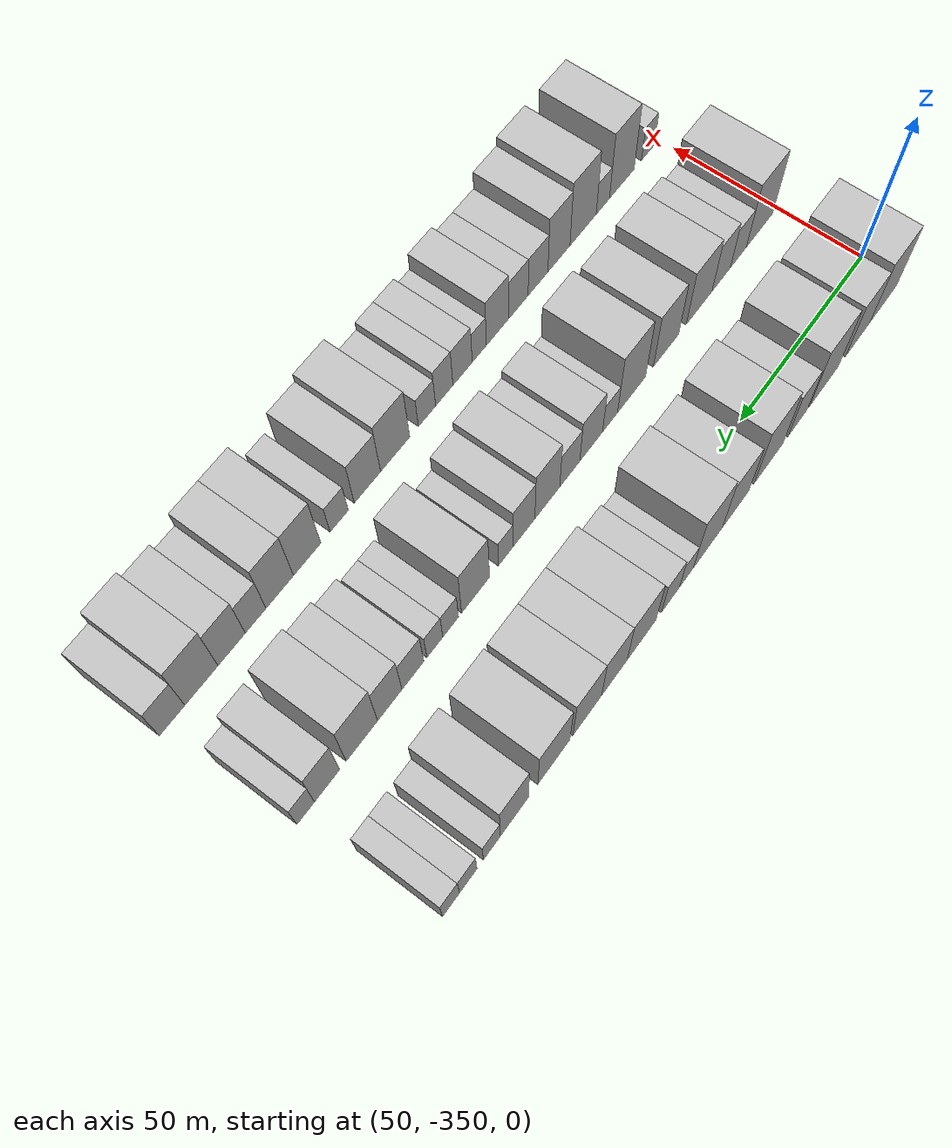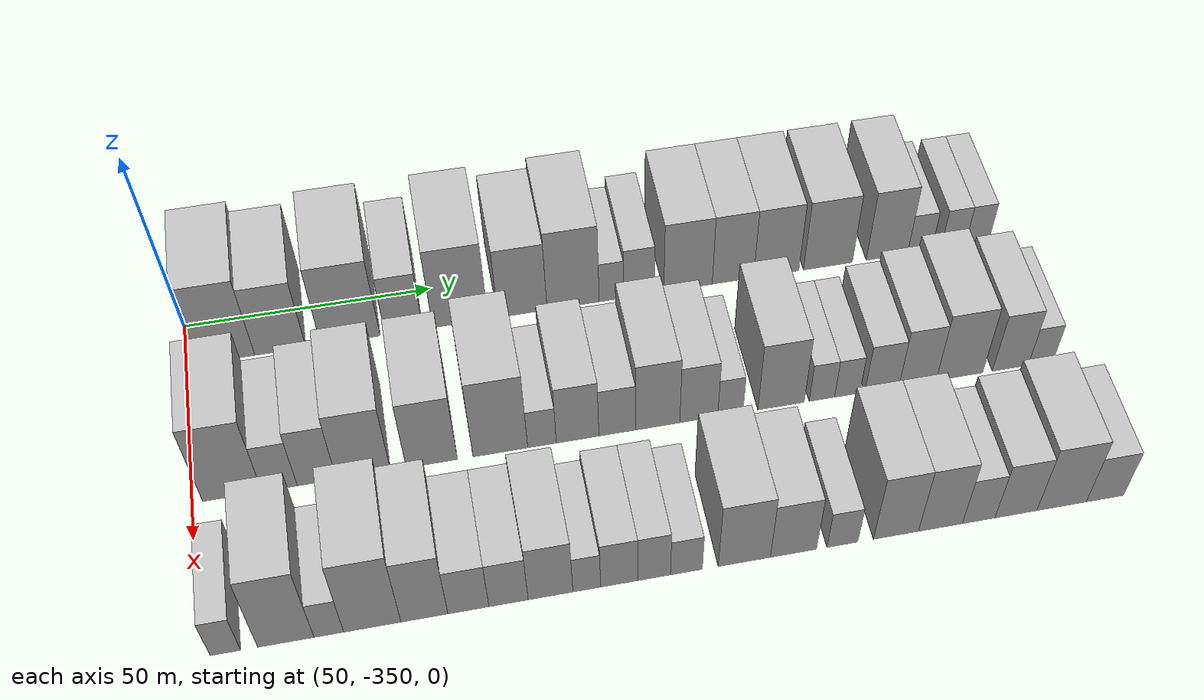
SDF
<sdf version="1.6">
 <world name="default">
  <model name="building_1">
   <static>1</static>
   <pose>50.0000 -342.1842 0 0.000000 0.000000 0.000000</pose>
   <link name="link">
    <pose>0 0 12.00 0 0 0</pose>
    <collision name="collision"><geometry><box><size>20.0000 11.6316 24.0000</size></box></geometry></collision>
    <visual name="visual">
     <cast_shadows>0</cast_shadows>
     <geometry><box><size>20.0000 11.6316 24.0000</size></box></geometry>
     <material>
      <script>
       <uri>model://HANNAS_wall/materials/scripts</uri>
       <uri>model://HANNAS_wall/materials/textures</uri>
       <name>vrc/HANNAS_wall</name>
      </script>
     </material>
    </visual>
   </link>
  </model>
  <model name="building_2">
   <static>1</static>
   <pose>50.0000 -331.2911 0 0.000000 0.000000 0.000000</pose>
   <link name="link">
    <pose>0 0 10.50 0 0 0</pose>
    <collision name="collision"><geometry><box><size>20.0000 10.1546 21.0000</size></box></geometry></collision>
    <visual name="visual">
     <cast_shadows>0</cast_shadows>
     <geometry><box><size>20.0000 10.1546 21.0000</size></box></geometry>
     <material>
      <script>
       <uri>model://HANNAS_wall/materials/scripts</uri>
       <uri>model://HANNAS_wall/materials/textures</uri>
       <name>vrc/HANNAS_wall</name>
      </script>
     </material>
    </visual>
   </link>
  </model>
  <model name="building_3">
   <static>1</static>
   <pose>50.0000 -317.2548 0 0.000000 0.000000 0.000000</pose>
   <link name="link">
    <pose>0 0 12.00 0 0 0</pose>
    <collision name="collision"><geometry><box><size>20.0000 11.9180 24.0000</size></box></geometry></collision>
    <visual name="visual">
     <cast_shadows>0</cast_shadows>
     <geometry><box><size>20.0000 11.9180 24.0000</size></box></geometry>
     <material>
      <script>
       <uri>model://HANNAS_wall/materials/scripts</uri>
       <uri>model://HANNAS_wall/materials/textures</uri>
       <name>vrc/HANNAS_wall</name>
      </script>
     </material>
    </visual>
   </link>
  </model>
  <model name="building_4">
   <static>1</static>
   <pose>50.0000 -306.4671 0 0.000000 0.000000 0.000000</pose>
   <link name="link">
    <pose>0 0 9.00 0 0 0</pose>
    <collision name="collision"><geometry><box><size>20.0000 7.6574 18.0000</size></box></geometry></collision>
    <visual name="visual">
     <cast_shadows>0</cast_shadows>
     <geometry><box><size>20.0000 7.6574 18.0000</size></box></geometry>
     <material>
      <script>
       <uri>model://HANNAS_wall/materials/scripts</uri>
       <uri>model://HANNAS_wall/materials/textures</uri>
       <name>vrc/HANNAS_wall</name>
      </script>
     </material>
    </visual>
   </link>
  </model>
  <model name="building_5">
   <static>1</static>
   <pose>50.0000 -295.0031 0 0.000000 0.000000 0.000000</pose>
   <link name="link">
    <pose>0 0 12.00 0 0 0</pose>
    <collision name="collision"><geometry><box><size>20.0000 11.2706 24.0000</size></box></geometry></collision>
    <visual name="visual">
     <cast_shadows>0</cast_shadows>
     <geometry><box><size>20.0000 11.2706 24.0000</size></box></geometry>
     <material>
      <script>
       <uri>model://HANNAS_wall/materials/scripts</uri>
       <uri>model://HANNAS_wall/materials/textures</uri>
       <name>vrc/HANNAS_wall</name>
      </script>
     </material>
    </visual>
   </link>
  </model>
  <model name="building_6">
   <static>1</static>
   <pose>50.0000 -282.3011 0 0.000000 0.000000 0.000000</pose>
   <link name="link">
    <pose>0 0 10.50 0 0 0</pose>
    <collision name="collision"><geometry><box><size>20.0000 10.1334 21.0000</size></box></geometry></collision>
    <visual name="visual">
     <cast_shadows>0</cast_shadows>
     <geometry><box><size>20.0000 10.1334 21.0000</size></box></geometry>
     <material>
      <script>
       <uri>model://HANNAS_wall/materials/scripts</uri>
       <uri>model://HANNAS_wall/materials/textures</uri>
       <name>vrc/HANNAS_wall</name>
      </script>
     </material>
    </visual>
   </link>
  </model>
  <model name="building_7">
   <static>1</static>
   <pose>50.0000 -271.8353 0 0.000000 0.000000 0.000000</pose>
   <link name="link">
    <pose>0 0 12.00 0 0 0</pose>
    <collision name="collision"><geometry><box><size>20.0000 10.7983 24.0000</size></box></geometry></collision>
    <visual name="visual">
     <cast_shadows>0</cast_shadows>
     <geometry><box><size>20.0000 10.7983 24.0000</size></box></geometry>
     <material>
      <script>
       <uri>model://HANNAS_wall/materials/scripts</uri>
       <uri>model://HANNAS_wall/materials/textures</uri>
       <name>vrc/HANNAS_wall</name>
      </script>
     </material>
    </visual>
   </link>
  </model>
  <model name="building_8">
   <static>1</static>
   <pose>50.0000 -263.9087 0 0.000000 0.000000 0.000000</pose>
   <link name="link">
    <pose>0 0 6.00 0 0 0</pose>
    <collision name="collision"><geometry><box><size>20.0000 5.0549 12.0000</size></box></geometry></collision>
    <visual name="visual">
     <cast_shadows>0</cast_shadows>
     <geometry><box><size>20.0000 5.0549 12.0000</size></box></geometry>
     <material>
      <script>
       <uri>model://HANNAS_wall/materials/scripts</uri>
       <uri>model://HANNAS_wall/materials/textures</uri>
       <name>vrc/HANNAS_wall</name>
      </script>
     </material>
    </visual>
   </link>
  </model>
  <model name="building_9">
   <static>1</static>
   <pose>50.0000 -258.1694 0 0.000000 0.000000 0.000000</pose>
   <link name="link">
    <pose>0 0 7.50 0 0 0</pose>
    <collision name="collision"><geometry><box><size>20.0000 6.4235 15.0000</size></box></geometry></collision>
    <visual name="visual">
     <cast_shadows>0</cast_shadows>
     <geometry><box><size>20.0000 6.4235 15.0000</size></box></geometry>
     <material>
      <script>
       <uri>model://HANNAS_wall/materials/scripts</uri>
       <uri>model://HANNAS_wall/materials/textures</uri>
       <name>vrc/HANNAS_wall</name>
      </script>
     </material>
    </visual>
   </link>
  </model>
  <model name="building_10">
   <static>1</static>
   <pose>50.0000 -247.8679 0 0.000000 0.000000 0.000000</pose>
   <link name="link">
    <pose>0 0 10.50 0 0 0</pose>
    <collision name="collision"><geometry><box><size>20.0000 10.1796 21.0000</size></box></geometry></collision>
    <visual name="visual">
     <cast_shadows>0</cast_shadows>
     <geometry><box><size>20.0000 10.1796 21.0000</size></box></geometry>
     <material>
      <script>
       <uri>model://HANNAS_wall/materials/scripts</uri>
       <uri>model://HANNAS_wall/materials/textures</uri>
       <name>vrc/HANNAS_wall</name>
      </script>
     </material>
    </visual>
   </link>
  </model>
  <model name="building_11">
   <static>1</static>
   <pose>50.0000 -238.3900 0 0.000000 0.000000 0.000000</pose>
   <link name="link">
    <pose>0 0 10.50 0 0 0</pose>
    <collision name="collision"><geometry><box><size>20.0000 8.7761 21.0000</size></box></geometry></collision>
    <visual name="visual">
     <cast_shadows>0</cast_shadows>
     <geometry><box><size>20.0000 8.7761 21.0000</size></box></geometry>
     <material>
      <script>
       <uri>model://HANNAS_wall/materials/scripts</uri>
       <uri>model://HANNAS_wall/materials/textures</uri>
       <name>vrc/HANNAS_wall</name>
      </script>
     </material>
    </visual>
   </link>
  </model>
  <model name="building_12">
   <static>1</static>
   <pose>50.0000 -229.1908 0 0.000000 0.000000 0.000000</pose>
   <link name="link">
    <pose>0 0 10.50 0 0 0</pose>
    <collision name="collision"><geometry><box><size>20.0000 9.6222 21.0000</size></box></geometry></collision>
    <visual name="visual">
     <cast_shadows>0</cast_shadows>
     <geometry><box><size>20.0000 9.6222 21.0000</size></box></geometry>
     <material>
      <script>
       <uri>model://HANNAS_wall/materials/scripts</uri>
       <uri>model://HANNAS_wall/materials/textures</uri>
       <name>vrc/HANNAS_wall</name>
      </script>
     </material>
    </visual>
   </link>
  </model>
  <model name="building_13">
   <static>1</static>
   <pose>50.0000 -218.1350 0 0.000000 0.000000 0.000000</pose>
   <link name="link">
    <pose>0 0 10.50 0 0 0</pose>
    <collision name="collision"><geometry><box><size>20.0000 10.4896 21.0000</size></box></geometry></collision>
    <visual name="visual">
     <cast_shadows>0</cast_shadows>
     <geometry><box><size>20.0000 10.4896 21.0000</size></box></geometry>
     <material>
      <script>
       <uri>model://HANNAS_wall/materials/scripts</uri>
       <uri>model://HANNAS_wall/materials/textures</uri>
       <name>vrc/HANNAS_wall</name>
      </script>
     </material>
    </visual>
   </link>
  </model>
  <model name="building_14">
   <static>1</static>
   <pose>50.0000 -205.4261 0 0.000000 0.000000 0.000000</pose>
   <link name="link">
    <pose>0 0 10.50 0 0 0</pose>
    <collision name="collision"><geometry><box><size>20.0000 8.9281 21.0000</size></box></geometry></collision>
    <visual name="visual">
     <cast_shadows>0</cast_shadows>
     <geometry><box><size>20.0000 8.9281 21.0000</size></box></geometry>
     <material>
      <script>
       <uri>model://HANNAS_wall/materials/scripts</uri>
       <uri>model://HANNAS_wall/materials/textures</uri>
       <name>vrc/HANNAS_wall</name>
      </script>
     </material>
    </visual>
   </link>
  </model>
  <model name="building_15">
   <static>1</static>
   <pose>50.0000 -198.3255 0 0.000000 0.000000 0.000000</pose>
   <link name="link">
    <pose>0 0 6.00 0 0 0</pose>
    <collision name="collision"><geometry><box><size>20.0000 5.2732 12.0000</size></box></geometry></collision>
    <visual name="visual">
     <cast_shadows>0</cast_shadows>
     <geometry><box><size>20.0000 5.2732 12.0000</size></box></geometry>
     <material>
      <script>
       <uri>model://HANNAS_wall/materials/scripts</uri>
       <uri>model://HANNAS_wall/materials/textures</uri>
       <name>vrc/HANNAS_wall</name>
      </script>
     </material>
    </visual>
   </link>
  </model>
  <model name="building_16">
   <static>1</static>
   <pose>50.0000 -191.0154 0 0.000000 0.000000 0.000000</pose>
   <link name="link">
    <pose>0 0 6.00 0 0 0</pose>
    <collision name="collision"><geometry><box><size>20.0000 5.3471 12.0000</size></box></geometry></collision>
    <visual name="visual">
     <cast_shadows>0</cast_shadows>
     <geometry><box><size>20.0000 5.3471 12.0000</size></box></geometry>
     <material>
      <script>
       <uri>model://HANNAS_wall/materials/scripts</uri>
       <uri>model://HANNAS_wall/materials/textures</uri>
       <name>vrc/HANNAS_wall</name>
      </script>
     </material>
    </visual>
   </link>
  </model>
  <model name="building_17">
   <static>1</static>
   <pose>50.0000 -185.7829 0 0.000000 0.000000 0.000000</pose>
   <link name="link">
    <pose>0 0 6.00 0 0 0</pose>
    <collision name="collision"><geometry><box><size>20.0000 5.1178 12.0000</size></box></geometry></collision>
    <visual name="visual">
     <cast_shadows>0</cast_shadows>
     <geometry><box><size>20.0000 5.1178 12.0000</size></box></geometry>
     <material>
      <script>
       <uri>model://HANNAS_wall/materials/scripts</uri>
       <uri>model://HANNAS_wall/materials/textures</uri>
       <name>vrc/HANNAS_wall</name>
      </script>
     </material>
    </visual>
   </link>
  </model>
  <model name="building_77">
   <static>1</static>
   <pose>82.0000 -342.4569 0 0.000000 0.000000 0.000000</pose>
   <link name="link">
    <pose>0 0 12.00 0 0 0</pose>
    <collision name="collision"><geometry><box><size>20.0000 11.0862 24.0000</size></box></geometry></collision>
    <visual name="visual">
     <cast_shadows>0</cast_shadows>
     <geometry><box><size>20.0000 11.0862 24.0000</size></box></geometry>
     <material>
      <script>
       <uri>model://HANNAS_wall/materials/scripts</uri>
       <uri>model://HANNAS_wall/materials/textures</uri>
       <name>vrc/HANNAS_wall</name>
      </script>
     </material>
    </visual>
   </link>
  </model>
  <model name="building_78">
   <static>1</static>
   <pose>82.0000 -333.6060 0 0.000000 0.000000 0.000000</pose>
   <link name="link">
    <pose>0 0 7.50 0 0 0</pose>
    <collision name="collision"><geometry><box><size>20.0000 6.6156 15.0000</size></box></geometry></collision>
    <visual name="visual">
     <cast_shadows>0</cast_shadows>
     <geometry><box><size>20.0000 6.6156 15.0000</size></box></geometry>
     <material>
      <script>
       <uri>model://HANNAS_wall/materials/scripts</uri>
       <uri>model://HANNAS_wall/materials/textures</uri>
       <name>vrc/HANNAS_wall</name>
      </script>
     </material>
    </visual>
   </link>
  </model>
  <model name="building_79">
   <static>1</static>
   <pose>82.0000 -326.5956 0 0.000000 0.000000 0.000000</pose>
   <link name="link">
    <pose>0 0 9.00 0 0 0</pose>
    <collision name="collision"><geometry><box><size>20.0000 7.4052 18.0000</size></box></geometry></collision>
    <visual name="visual">
     <cast_shadows>0</cast_shadows>
     <geometry><box><size>20.0000 7.4052 18.0000</size></box></geometry>
     <material>
      <script>
       <uri>model://HANNAS_wall/materials/scripts</uri>
       <uri>model://HANNAS_wall/materials/textures</uri>
       <name>vrc/HANNAS_wall</name>
      </script>
     </material>
    </visual>
   </link>
  </model>
  <model name="building_80">
   <static>1</static>
   <pose>82.0000 -317.7588 0 0.000000 0.000000 0.000000</pose>
   <link name="link">
    <pose>0 0 10.50 0 0 0</pose>
    <collision name="collision"><geometry><box><size>20.0000 10.2683 21.0000</size></box></geometry></collision>
    <visual name="visual">
     <cast_shadows>0</cast_shadows>
     <geometry><box><size>20.0000 10.2683 21.0000</size></box></geometry>
     <material>
      <script>
       <uri>model://HANNAS_wall/materials/scripts</uri>
       <uri>model://HANNAS_wall/materials/textures</uri>
       <name>vrc/HANNAS_wall</name>
      </script>
     </material>
    </visual>
   </link>
  </model>
  <model name="building_81">
   <static>1</static>
   <pose>82.0000 -304.7113 0 0.000000 0.000000 0.000000</pose>
   <link name="link">
    <pose>0 0 10.50 0 0 0</pose>
    <collision name="collision"><geometry><box><size>20.0000 9.8267 21.0000</size></box></geometry></collision>
    <visual name="visual">
     <cast_shadows>0</cast_shadows>
     <geometry><box><size>20.0000 9.8267 21.0000</size></box></geometry>
     <material>
      <script>
       <uri>model://HANNAS_wall/materials/scripts</uri>
       <uri>model://HANNAS_wall/materials/textures</uri>
       <name>vrc/HANNAS_wall</name>
      </script>
     </material>
    </visual>
   </link>
  </model>
  <model name="building_82">
   <static>1</static>
   <pose>82.0000 -291.5035 0 0.000000 0.000000 0.000000</pose>
   <link name="link">
    <pose>0 0 12.00 0 0 0</pose>
    <collision name="collision"><geometry><box><size>20.0000 10.5889 24.0000</size></box></geometry></collision>
    <visual name="visual">
     <cast_shadows>0</cast_shadows>
     <geometry><box><size>20.0000 10.5889 24.0000</size></box></geometry>
     <material>
      <script>
       <uri>model://HANNAS_wall/materials/scripts</uri>
       <uri>model://HANNAS_wall/materials/textures</uri>
       <name>vrc/HANNAS_wall</name>
      </script>
     </material>
    </visual>
   </link>
  </model>
  <model name="building_83">
   <static>1</static>
   <pose>82.0000 -283.4241 0 0.000000 0.000000 0.000000</pose>
   <link name="link">
    <pose>0 0 6.00 0 0 0</pose>
    <collision name="collision"><geometry><box><size>20.0000 5.5699 12.0000</size></box></geometry></collision>
    <visual name="visual">
     <cast_shadows>0</cast_shadows>
     <geometry><box><size>20.0000 5.5699 12.0000</size></box></geometry>
     <material>
      <script>
       <uri>model://HANNAS_wall/materials/scripts</uri>
       <uri>model://HANNAS_wall/materials/textures</uri>
       <name>vrc/HANNAS_wall</name>
      </script>
     </material>
    </visual>
   </link>
  </model>
  <model name="building_84">
   <static>1</static>
   <pose>82.0000 -276.4804 0 0.000000 0.000000 0.000000</pose>
   <link name="link">
    <pose>0 0 9.00 0 0 0</pose>
    <collision name="collision"><geometry><box><size>20.0000 8.3175 18.0000</size></box></geometry></collision>
    <visual name="visual">
     <cast_shadows>0</cast_shadows>
     <geometry><box><size>20.0000 8.3175 18.0000</size></box></geometry>
     <material>
      <script>
       <uri>model://HANNAS_wall/materials/scripts</uri>
       <uri>model://HANNAS_wall/materials/textures</uri>
       <name>vrc/HANNAS_wall</name>
      </script>
     </material>
    </visual>
   </link>
  </model>
  <model name="building_85">
   <static>1</static>
   <pose>82.0000 -268.7316 0 0.000000 0.000000 0.000000</pose>
   <link name="link">
    <pose>0 0 7.50 0 0 0</pose>
    <collision name="collision"><geometry><box><size>20.0000 7.1803 15.0000</size></box></geometry></collision>
    <visual name="visual">
     <cast_shadows>0</cast_shadows>
     <geometry><box><size>20.0000 7.1803 15.0000</size></box></geometry>
     <material>
      <script>
       <uri>model://HANNAS_wall/materials/scripts</uri>
       <uri>model://HANNAS_wall/materials/textures</uri>
       <name>vrc/HANNAS_wall</name>
      </script>
     </material>
    </visual>
   </link>
  </model>
  <model name="building_86">
   <static>1</static>
   <pose>82.0000 -260.7573 0 0.000000 0.000000 0.000000</pose>
   <link name="link">
    <pose>0 0 10.50 0 0 0</pose>
    <collision name="collision"><geometry><box><size>20.0000 8.7683 21.0000</size></box></geometry></collision>
    <visual name="visual">
     <cast_shadows>0</cast_shadows>
     <geometry><box><size>20.0000 8.7683 21.0000</size></box></geometry>
     <material>
      <script>
       <uri>model://HANNAS_wall/materials/scripts</uri>
       <uri>model://HANNAS_wall/materials/textures</uri>
       <name>vrc/HANNAS_wall</name>
      </script>
     </material>
    </visual>
   </link>
  </model>
  <model name="building_87">
   <static>1</static>
   <pose>82.0000 -252.6054 0 0.000000 0.000000 0.000000</pose>
   <link name="link">
    <pose>0 0 9.00 0 0 0</pose>
    <collision name="collision"><geometry><box><size>20.0000 7.5355 18.0000</size></box></geometry></collision>
    <visual name="visual">
     <cast_shadows>0</cast_shadows>
     <geometry><box><size>20.0000 7.5355 18.0000</size></box></geometry>
     <material>
      <script>
       <uri>model://HANNAS_wall/materials/scripts</uri>
       <uri>model://HANNAS_wall/materials/textures</uri>
       <name>vrc/HANNAS_wall</name>
      </script>
     </material>
    </visual>
   </link>
  </model>
  <model name="building_88">
   <static>1</static>
   <pose>82.0000 -246.3213 0 0.000000 0.000000 0.000000</pose>
   <link name="link">
    <pose>0 0 6.00 0 0 0</pose>
    <collision name="collision"><geometry><box><size>20.0000 5.0325 12.0000</size></box></geometry></collision>
    <visual name="visual">
     <cast_shadows>0</cast_shadows>
     <geometry><box><size>20.0000 5.0325 12.0000</size></box></geometry>
     <material>
      <script>
       <uri>model://HANNAS_wall/materials/scripts</uri>
       <uri>model://HANNAS_wall/materials/textures</uri>
       <name>vrc/HANNAS_wall</name>
      </script>
     </material>
    </visual>
   </link>
  </model>
  <model name="building_89">
   <static>1</static>
   <pose>82.0000 -236.1418 0 0.000000 0.000000 0.000000</pose>
   <link name="link">
    <pose>0 0 10.50 0 0 0</pose>
    <collision name="collision"><geometry><box><size>20.0000 9.3266 21.0000</size></box></geometry></collision>
    <visual name="visual">
     <cast_shadows>0</cast_shadows>
     <geometry><box><size>20.0000 9.3266 21.0000</size></box></geometry>
     <material>
      <script>
       <uri>model://HANNAS_wall/materials/scripts</uri>
       <uri>model://HANNAS_wall/materials/textures</uri>
       <name>vrc/HANNAS_wall</name>
      </script>
     </material>
    </visual>
   </link>
  </model>
  <model name="building_90">
   <static>1</static>
   <pose>82.0000 -227.9074 0 0.000000 0.000000 0.000000</pose>
   <link name="link">
    <pose>0 0 6.00 0 0 0</pose>
    <collision name="collision"><geometry><box><size>20.0000 5.1420 12.0000</size></box></geometry></collision>
    <visual name="visual">
     <cast_shadows>0</cast_shadows>
     <geometry><box><size>20.0000 5.1420 12.0000</size></box></geometry>
     <material>
      <script>
       <uri>model://HANNAS_wall/materials/scripts</uri>
       <uri>model://HANNAS_wall/materials/textures</uri>
       <name>vrc/HANNAS_wall</name>
      </script>
     </material>
    </visual>
   </link>
  </model>
  <model name="building_91">
   <static>1</static>
   <pose>82.0000 -222.7720 0 0.000000 0.000000 0.000000</pose>
   <link name="link">
    <pose>0 0 6.00 0 0 0</pose>
    <collision name="collision"><geometry><box><size>20.0000 5.1288 12.0000</size></box></geometry></collision>
    <visual name="visual">
     <cast_shadows>0</cast_shadows>
     <geometry><box><size>20.0000 5.1288 12.0000</size></box></geometry>
     <material>
      <script>
       <uri>model://HANNAS_wall/materials/scripts</uri>
       <uri>model://HANNAS_wall/materials/textures</uri>
       <name>vrc/HANNAS_wall</name>
      </script>
     </material>
    </visual>
   </link>
  </model>
  <model name="building_92">
   <static>1</static>
   <pose>82.0000 -215.7240 0 0.000000 0.000000 0.000000</pose>
   <link name="link">
    <pose>0 0 7.50 0 0 0</pose>
    <collision name="collision"><geometry><box><size>20.0000 6.9672 15.0000</size></box></geometry></collision>
    <visual name="visual">
     <cast_shadows>0</cast_shadows>
     <geometry><box><size>20.0000 6.9672 15.0000</size></box></geometry>
     <material>
      <script>
       <uri>model://HANNAS_wall/materials/scripts</uri>
       <uri>model://HANNAS_wall/materials/textures</uri>
       <name>vrc/HANNAS_wall</name>
      </script>
     </material>
    </visual>
   </link>
  </model>
  <model name="building_93">
   <static>1</static>
   <pose>82.0000 -208.4207 0 0.000000 0.000000 0.000000</pose>
   <link name="link">
    <pose>0 0 9.00 0 0 0</pose>
    <collision name="collision"><geometry><box><size>20.0000 7.6394 18.0000</size></box></geometry></collision>
    <visual name="visual">
     <cast_shadows>0</cast_shadows>
     <geometry><box><size>20.0000 7.6394 18.0000</size></box></geometry>
     <material>
      <script>
       <uri>model://HANNAS_wall/materials/scripts</uri>
       <uri>model://HANNAS_wall/materials/textures</uri>
       <name>vrc/HANNAS_wall</name>
      </script>
     </material>
    </visual>
   </link>
  </model>
  <model name="building_94">
   <static>1</static>
   <pose>82.0000 -199.7938 0 0.000000 0.000000 0.000000</pose>
   <link name="link">
    <pose>0 0 10.50 0 0 0</pose>
    <collision name="collision"><geometry><box><size>20.0000 9.6144 21.0000</size></box></geometry></collision>
    <visual name="visual">
     <cast_shadows>0</cast_shadows>
     <geometry><box><size>20.0000 9.6144 21.0000</size></box></geometry>
     <material>
      <script>
       <uri>model://HANNAS_wall/materials/scripts</uri>
       <uri>model://HANNAS_wall/materials/textures</uri>
       <name>vrc/HANNAS_wall</name>
      </script>
     </material>
    </visual>
   </link>
  </model>
  <model name="building_95">
   <static>1</static>
   <pose>82.0000 -189.2488 0 0.000000 0.000000 0.000000</pose>
   <link name="link">
    <pose>0 0 9.00 0 0 0</pose>
    <collision name="collision"><geometry><box><size>20.0000 7.4757 18.0000</size></box></geometry></collision>
    <visual name="visual">
     <cast_shadows>0</cast_shadows>
     <geometry><box><size>20.0000 7.4757 18.0000</size></box></geometry>
     <material>
      <script>
       <uri>model://HANNAS_wall/materials/scripts</uri>
       <uri>model://HANNAS_wall/materials/textures</uri>
       <name>vrc/HANNAS_wall</name>
      </script>
     </material>
    </visual>
   </link>
  </model>
  <model name="building_96">
   <static>1</static>
   <pose>82.0000 -182.9262 0 0.000000 0.000000 0.000000</pose>
   <link name="link">
    <pose>0 0 6.00 0 0 0</pose>
    <collision name="collision"><geometry><box><size>20.0000 5.1694 12.0000</size></box></geometry></collision>
    <visual name="visual">
     <cast_shadows>0</cast_shadows>
     <geometry><box><size>20.0000 5.1694 12.0000</size></box></geometry>
     <material>
      <script>
       <uri>model://HANNAS_wall/materials/scripts</uri>
       <uri>model://HANNAS_wall/materials/textures</uri>
       <name>vrc/HANNAS_wall</name>
      </script>
     </material>
    </visual>
   </link>
  </model>
  <model name="building_155">
   <static>1</static>
   <pose>114.0000 -345.3198 0 0.000000 0.000000 0.000000</pose>
   <link name="link">
    <pose>0 0 6.00 0 0 0</pose>
    <collision name="collision"><geometry><box><size>20.0000 5.3604 12.0000</size></box></geometry></collision>
    <visual name="visual">
     <cast_shadows>0</cast_shadows>
     <geometry><box><size>20.0000 5.3604 12.0000</size></box></geometry>
     <material>
      <script>
       <uri>model://HANNAS_wall/materials/scripts</uri>
       <uri>model://HANNAS_wall/materials/textures</uri>
       <name>vrc/HANNAS_wall</name>
      </script>
     </material>
    </visual>
   </link>
  </model>
  <model name="building_156">
   <static>1</static>
   <pose>114.0000 -334.6673 0 0.000000 0.000000 0.000000</pose>
   <link name="link">
    <pose>0 0 12.00 0 0 0</pose>
    <collision name="collision"><geometry><box><size>20.0000 9.9446 24.0000</size></box></geometry></collision>
    <visual name="visual">
     <cast_shadows>0</cast_shadows>
     <geometry><box><size>20.0000 9.9446 24.0000</size></box></geometry>
     <material>
      <script>
       <uri>model://HANNAS_wall/materials/scripts</uri>
       <uri>model://HANNAS_wall/materials/textures</uri>
       <name>vrc/HANNAS_wall</name>
      </script>
     </material>
    </visual>
   </link>
  </model>
  <model name="building_157">
   <static>1</static>
   <pose>114.0000 -327.0502 0 0.000000 0.000000 0.000000</pose>
   <link name="link">
    <pose>0 0 6.00 0 0 0</pose>
    <collision name="collision"><geometry><box><size>20.0000 5.2896 12.0000</size></box></geometry></collision>
    <visual name="visual">
     <cast_shadows>0</cast_shadows>
     <geometry><box><size>20.0000 5.2896 12.0000</size></box></geometry>
     <material>
      <script>
       <uri>model://HANNAS_wall/materials/scripts</uri>
       <uri>model://HANNAS_wall/materials/textures</uri>
       <name>vrc/HANNAS_wall</name>
      </script>
     </material>
    </visual>
   </link>
  </model>
  <model name="building_158">
   <static>1</static>
   <pose>114.0000 -319.2860 0 0.000000 0.000000 0.000000</pose>
   <link name="link">
    <pose>0 0 12.00 0 0 0</pose>
    <collision name="collision"><geometry><box><size>20.0000 10.2388 24.0000</size></box></geometry></collision>
    <visual name="visual">
     <cast_shadows>0</cast_shadows>
     <geometry><box><size>20.0000 10.2388 24.0000</size></box></geometry>
     <material>
      <script>
       <uri>model://HANNAS_wall/materials/scripts</uri>
       <uri>model://HANNAS_wall/materials/textures</uri>
       <name>vrc/HANNAS_wall</name>
      </script>
     </material>
    </visual>
   </link>
  </model>
  <model name="building_159">
   <static>1</static>
   <pose>114.0000 -309.9377 0 0.000000 0.000000 0.000000</pose>
   <link name="link">
    <pose>0 0 10.50 0 0 0</pose>
    <collision name="collision"><geometry><box><size>20.0000 8.4578 21.0000</size></box></geometry></collision>
    <visual name="visual">
     <cast_shadows>0</cast_shadows>
     <geometry><box><size>20.0000 8.4578 21.0000</size></box></geometry>
     <material>
      <script>
       <uri>model://HANNAS_wall/materials/scripts</uri>
       <uri>model://HANNAS_wall/materials/textures</uri>
       <name>vrc/HANNAS_wall</name>
      </script>
     </material>
    </visual>
   </link>
  </model>
  <model name="building_160">
   <static>1</static>
   <pose>114.0000 -301.9869 0 0.000000 0.000000 0.000000</pose>
   <link name="link">
    <pose>0 0 7.50 0 0 0</pose>
    <collision name="collision"><geometry><box><size>20.0000 7.4438 15.0000</size></box></geometry></collision>
    <visual name="visual">
     <cast_shadows>0</cast_shadows>
     <geometry><box><size>20.0000 7.4438 15.0000</size></box></geometry>
     <material>
      <script>
       <uri>model://HANNAS_wall/materials/scripts</uri>
       <uri>model://HANNAS_wall/materials/textures</uri>
       <name>vrc/HANNAS_wall</name>
      </script>
     </material>
    </visual>
   </link>
  </model>
  <model name="building_161">
   <static>1</static>
   <pose>114.0000 -294.6994 0 0.000000 0.000000 0.000000</pose>
   <link name="link">
    <pose>0 0 7.50 0 0 0</pose>
    <collision name="collision"><geometry><box><size>20.0000 7.1312 15.0000</size></box></geometry></collision>
    <visual name="visual">
     <cast_shadows>0</cast_shadows>
     <geometry><box><size>20.0000 7.1312 15.0000</size></box></geometry>
     <material>
      <script>
       <uri>model://HANNAS_wall/materials/scripts</uri>
       <uri>model://HANNAS_wall/materials/textures</uri>
       <name>vrc/HANNAS_wall</name>
      </script>
     </material>
    </visual>
   </link>
  </model>
  <model name="building_162">
   <static>1</static>
   <pose>114.0000 -287.0330 0 0.000000 0.000000 0.000000</pose>
   <link name="link">
    <pose>0 0 9.00 0 0 0</pose>
    <collision name="collision"><geometry><box><size>20.0000 8.2016 18.0000</size></box></geometry></collision>
    <visual name="visual">
     <cast_shadows>0</cast_shadows>
     <geometry><box><size>20.0000 8.2016 18.0000</size></box></geometry>
     <material>
      <script>
       <uri>model://HANNAS_wall/materials/scripts</uri>
       <uri>model://HANNAS_wall/materials/textures</uri>
       <name>vrc/HANNAS_wall</name>
      </script>
     </material>
    </visual>
   </link>
  </model>
  <model name="building_163">
   <static>1</static>
   <pose>114.0000 -280.3704 0 0.000000 0.000000 0.000000</pose>
   <link name="link">
    <pose>0 0 6.00 0 0 0</pose>
    <collision name="collision"><geometry><box><size>20.0000 5.1237 12.0000</size></box></geometry></collision>
    <visual name="visual">
     <cast_shadows>0</cast_shadows>
     <geometry><box><size>20.0000 5.1237 12.0000</size></box></geometry>
     <material>
      <script>
       <uri>model://HANNAS_wall/materials/scripts</uri>
       <uri>model://HANNAS_wall/materials/textures</uri>
       <name>vrc/HANNAS_wall</name>
      </script>
     </material>
    </visual>
   </link>
  </model>
  <model name="building_164">
   <static>1</static>
   <pose>114.0000 -274.3786 0 0.000000 0.000000 0.000000</pose>
   <link name="link">
    <pose>0 0 7.50 0 0 0</pose>
    <collision name="collision"><geometry><box><size>20.0000 6.8599 15.0000</size></box></geometry></collision>
    <visual name="visual">
     <cast_shadows>0</cast_shadows>
     <geometry><box><size>20.0000 6.8599 15.0000</size></box></geometry>
     <material>
      <script>
       <uri>model://HANNAS_wall/materials/scripts</uri>
       <uri>model://HANNAS_wall/materials/textures</uri>
       <name>vrc/HANNAS_wall</name>
      </script>
     </material>
    </visual>
   </link>
  </model>
  <model name="building_165">
   <static>1</static>
   <pose>114.0000 -267.9215 0 0.000000 0.000000 0.000000</pose>
   <link name="link">
    <pose>0 0 7.50 0 0 0</pose>
    <collision name="collision"><geometry><box><size>20.0000 6.0543 15.0000</size></box></geometry></collision>
    <visual name="visual">
     <cast_shadows>0</cast_shadows>
     <geometry><box><size>20.0000 6.0543 15.0000</size></box></geometry>
     <material>
      <script>
       <uri>model://HANNAS_wall/materials/scripts</uri>
       <uri>model://HANNAS_wall/materials/textures</uri>
       <name>vrc/HANNAS_wall</name>
      </script>
     </material>
    </visual>
   </link>
  </model>
  <model name="building_166">
   <static>1</static>
   <pose>114.0000 -261.9200 0 0.000000 0.000000 0.000000</pose>
   <link name="link">
    <pose>0 0 6.00 0 0 0</pose>
    <collision name="collision"><geometry><box><size>20.0000 5.9487 12.0000</size></box></geometry></collision>
    <visual name="visual">
     <cast_shadows>0</cast_shadows>
     <geometry><box><size>20.0000 5.9487 12.0000</size></box></geometry>
     <material>
      <script>
       <uri>model://HANNAS_wall/materials/scripts</uri>
       <uri>model://HANNAS_wall/materials/textures</uri>
       <name>vrc/HANNAS_wall</name>
      </script>
     </material>
    </visual>
   </link>
  </model>
  <model name="building_167">
   <static>1</static>
   <pose>114.0000 -251.0320 0 0.000000 0.000000 0.000000</pose>
   <link name="link">
    <pose>0 0 10.50 0 0 0</pose>
    <collision name="collision"><geometry><box><size>20.0000 9.8274 21.0000</size></box></geometry></collision>
    <visual name="visual">
     <cast_shadows>0</cast_shadows>
     <geometry><box><size>20.0000 9.8274 21.0000</size></box></geometry>
     <material>
      <script>
       <uri>model://HANNAS_wall/materials/scripts</uri>
       <uri>model://HANNAS_wall/materials/textures</uri>
       <name>vrc/HANNAS_wall</name>
      </script>
     </material>
    </visual>
   </link>
  </model>
  <model name="building_168">
   <static>1</static>
   <pose>114.0000 -241.7650 0 0.000000 0.000000 0.000000</pose>
   <link name="link">
    <pose>0 0 9.00 0 0 0</pose>
    <collision name="collision"><geometry><box><size>20.0000 8.7066 18.0000</size></box></geometry></collision>
    <visual name="visual">
     <cast_shadows>0</cast_shadows>
     <geometry><box><size>20.0000 8.7066 18.0000</size></box></geometry>
     <material>
      <script>
       <uri>model://HANNAS_wall/materials/scripts</uri>
       <uri>model://HANNAS_wall/materials/textures</uri>
       <name>vrc/HANNAS_wall</name>
      </script>
     </material>
    </visual>
   </link>
  </model>
  <model name="building_169">
   <static>1</static>
   <pose>114.0000 -232.4713 0 0.000000 0.000000 0.000000</pose>
   <link name="link">
    <pose>0 0 6.00 0 0 0</pose>
    <collision name="collision"><geometry><box><size>20.0000 5.8808 12.0000</size></box></geometry></collision>
    <visual name="visual">
     <cast_shadows>0</cast_shadows>
     <geometry><box><size>20.0000 5.8808 12.0000</size></box></geometry>
     <material>
      <script>
       <uri>model://HANNAS_wall/materials/scripts</uri>
       <uri>model://HANNAS_wall/materials/textures</uri>
       <name>vrc/HANNAS_wall</name>
      </script>
     </material>
    </visual>
   </link>
  </model>
  <model name="building_170">
   <static>1</static>
   <pose>114.0000 -222.2015 0 0.000000 0.000000 0.000000</pose>
   <link name="link">
    <pose>0 0 10.50 0 0 0</pose>
    <collision name="collision"><geometry><box><size>20.0000 8.6587 21.0000</size></box></geometry></collision>
    <visual name="visual">
     <cast_shadows>0</cast_shadows>
     <geometry><box><size>20.0000 8.6587 21.0000</size></box></geometry>
     <material>
      <script>
       <uri>model://HANNAS_wall/materials/scripts</uri>
       <uri>model://HANNAS_wall/materials/textures</uri>
       <name>vrc/HANNAS_wall</name>
      </script>
     </material>
    </visual>
   </link>
  </model>
  <model name="building_171">
   <static>1</static>
   <pose>114.0000 -213.6154 0 0.000000 0.000000 0.000000</pose>
   <link name="link">
    <pose>0 0 10.50 0 0 0</pose>
    <collision name="collision"><geometry><box><size>20.0000 8.5135 21.0000</size></box></geometry></collision>
    <visual name="visual">
     <cast_shadows>0</cast_shadows>
     <geometry><box><size>20.0000 8.5135 21.0000</size></box></geometry>
     <material>
      <script>
       <uri>model://HANNAS_wall/materials/scripts</uri>
       <uri>model://HANNAS_wall/materials/textures</uri>
       <name>vrc/HANNAS_wall</name>
      </script>
     </material>
    </visual>
   </link>
  </model>
  <model name="building_172">
   <static>1</static>
   <pose>114.0000 -206.1914 0 0.000000 0.000000 0.000000</pose>
   <link name="link">
    <pose>0 0 7.50 0 0 0</pose>
    <collision name="collision"><geometry><box><size>20.0000 6.3344 15.0000</size></box></geometry></collision>
    <visual name="visual">
     <cast_shadows>0</cast_shadows>
     <geometry><box><size>20.0000 6.3344 15.0000</size></box></geometry>
     <material>
      <script>
       <uri>model://HANNAS_wall/materials/scripts</uri>
       <uri>model://HANNAS_wall/materials/textures</uri>
       <name>vrc/HANNAS_wall</name>
      </script>
     </material>
    </visual>
   </link>
  </model>
  <model name="building_173">
   <static>1</static>
   <pose>114.0000 -198.9329 0 0.000000 0.000000 0.000000</pose>
   <link name="link">
    <pose>0 0 9.00 0 0 0</pose>
    <collision name="collision"><geometry><box><size>20.0000 8.1826 18.0000</size></box></geometry></collision>
    <visual name="visual">
     <cast_shadows>0</cast_shadows>
     <geometry><box><size>20.0000 8.1826 18.0000</size></box></geometry>
     <material>
      <script>
       <uri>model://HANNAS_wall/materials/scripts</uri>
       <uri>model://HANNAS_wall/materials/textures</uri>
       <name>vrc/HANNAS_wall</name>
      </script>
     </material>
    </visual>
   </link>
  </model>
  <model name="building_174">
   <static>1</static>
   <pose>114.0000 -189.9660 0 0.000000 0.000000 0.000000</pose>
   <link name="link">
    <pose>0 0 10.50 0 0 0</pose>
    <collision name="collision"><geometry><box><size>20.0000 9.7511 21.0000</size></box></geometry></collision>
    <visual name="visual">
     <cast_shadows>0</cast_shadows>
     <geometry><box><size>20.0000 9.7511 21.0000</size></box></geometry>
     <material>
      <script>
       <uri>model://HANNAS_wall/materials/scripts</uri>
       <uri>model://HANNAS_wall/materials/textures</uri>
       <name>vrc/HANNAS_wall</name>
      </script>
     </material>
    </visual>
   </link>
  </model>
  <model name="building_175">
   <static>1</static>
   <pose>114.0000 -181.3973 0 0.000000 0.000000 0.000000</pose>
   <link name="link">
    <pose>0 0 7.50 0 0 0</pose>
    <collision name="collision"><geometry><box><size>20.0000 7.3863 15.0000</size></box></geometry></collision>
    <visual name="visual">
     <cast_shadows>0</cast_shadows>
     <geometry><box><size>20.0000 7.3863 15.0000</size></box></geometry>
     <material>
      <script>
       <uri>model://HANNAS_wall/materials/scripts</uri>
       <uri>model://HANNAS_wall/materials/textures</uri>
       <name>vrc/HANNAS_wall</name>
      </script>
     </material>
    </visual>
   </link>
  </model>
 </world>
</sdf>
